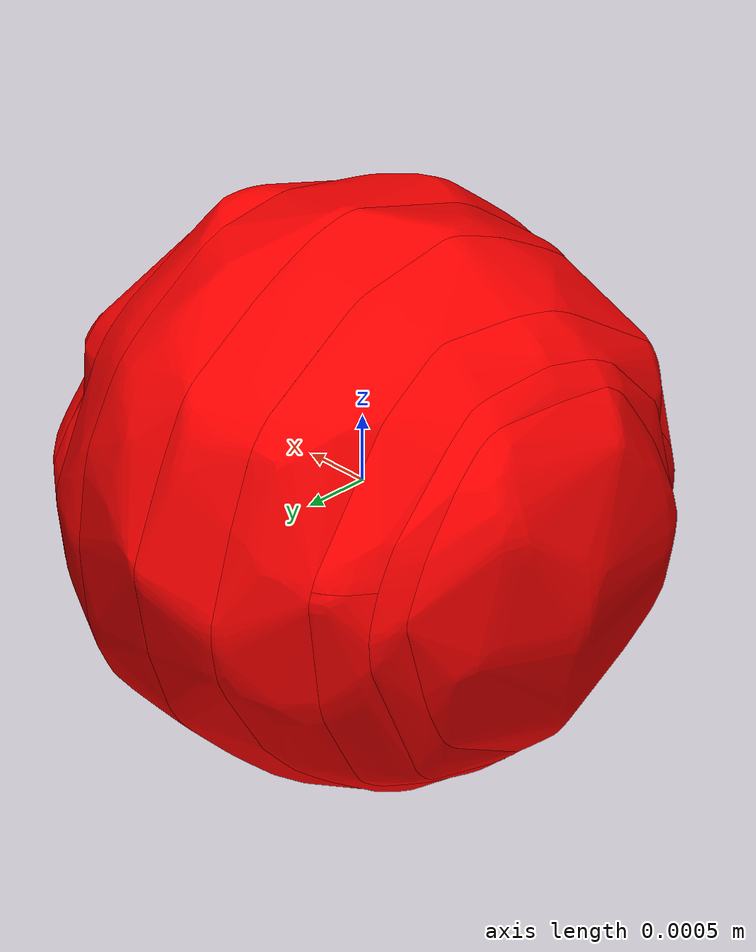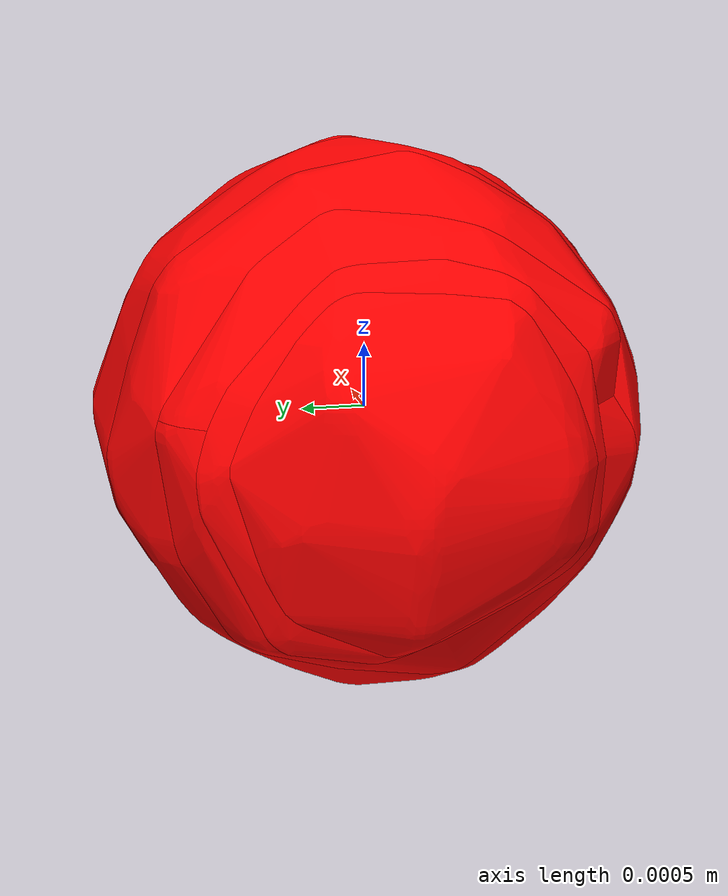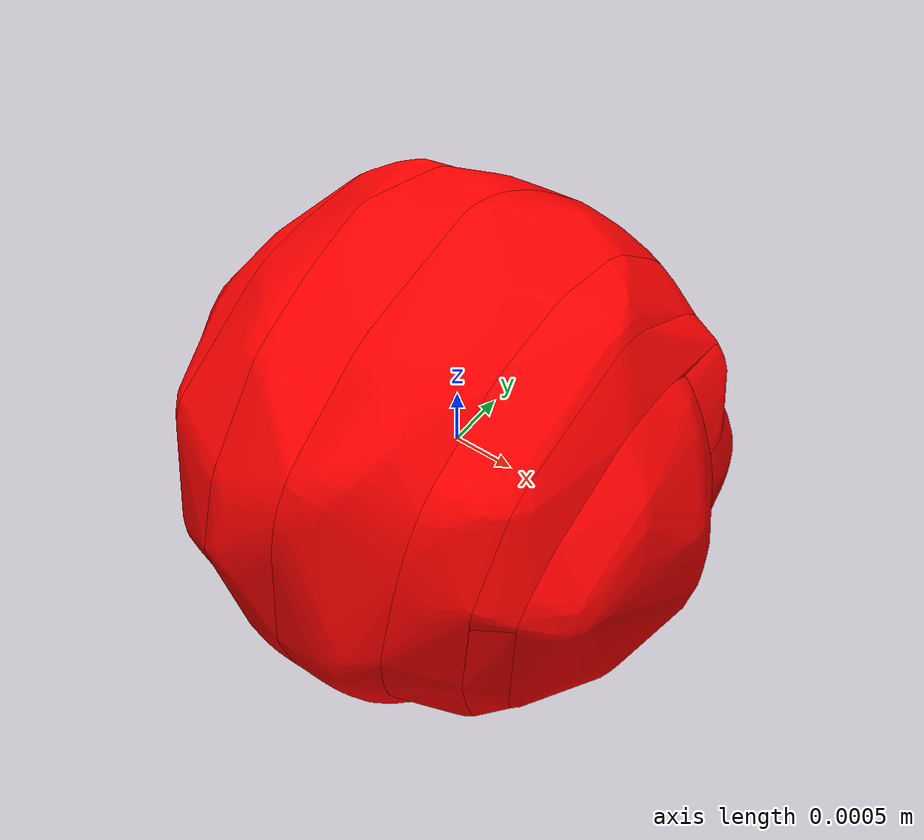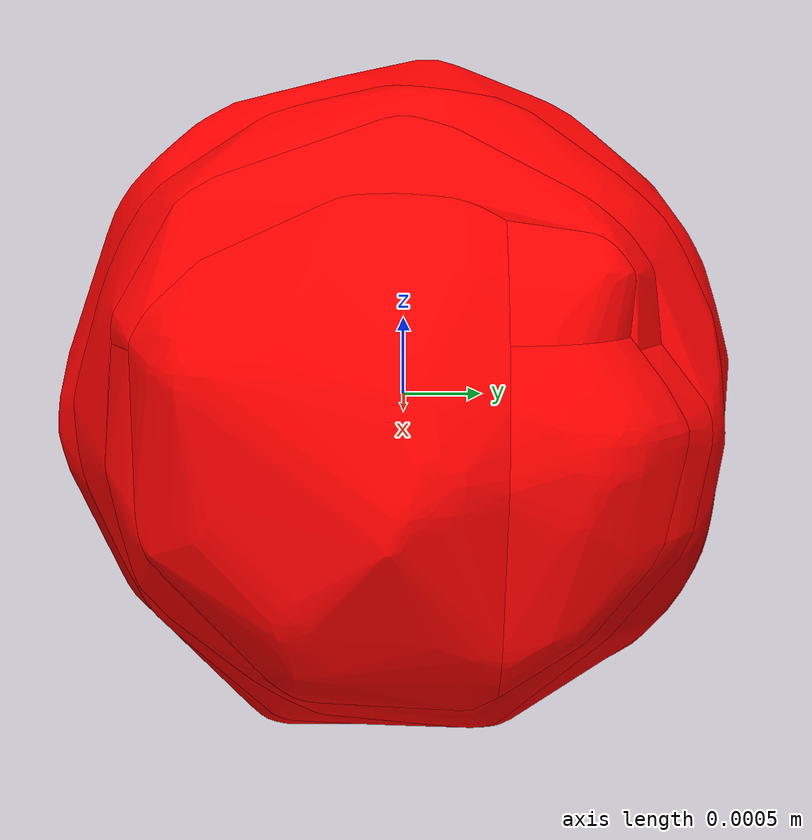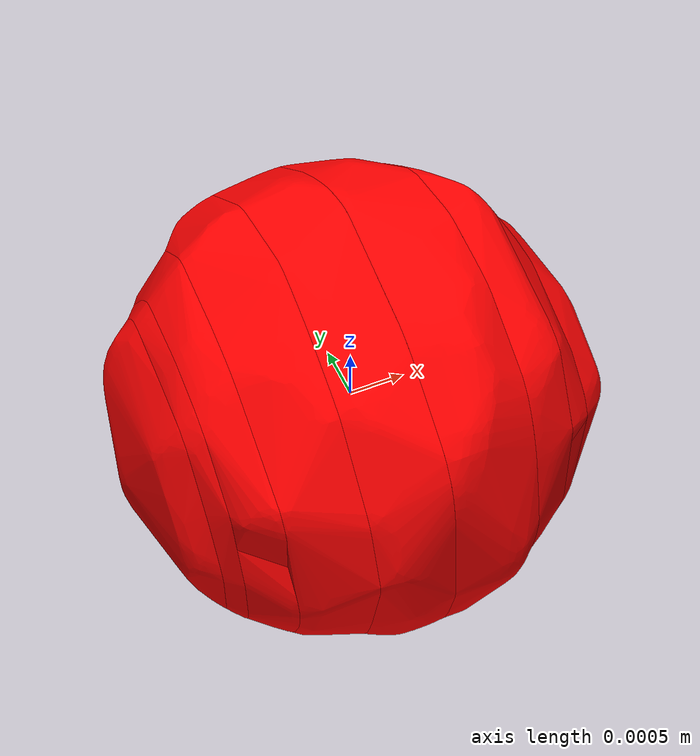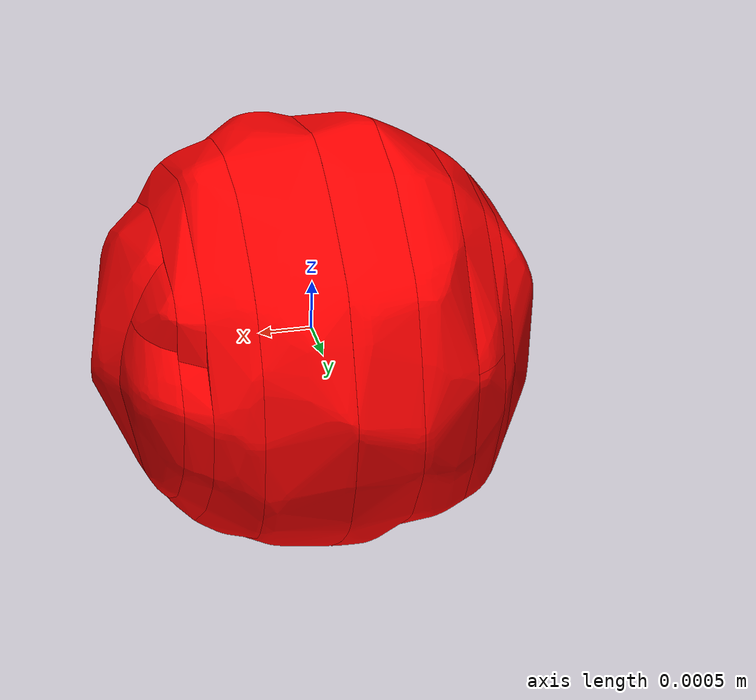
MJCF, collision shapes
<?xml version="1.0" ?>
<mujoco model="pepper_black">
	<compiler meshdir="pepper_black/meshes" texturedir="pepper_black/textures" angle="radian" autolimits="true" balanceinertia="true" boundmass="0.000001" boundinertia="0.000001"/>
	<default>
		<default class="visual">
			<geom contype="0" conaffinity="0"/>
		</default>
		<default class="collision">
			<geom rgba="1.0 0.0 0.0 0.0"/>
		</default>
	</default>
	<asset>
		<mesh name="PepperBlack" file="obj/PepperBlack.obj" scale="1.0 1.0 1.0"/>
		<mesh name="PepperBlack_001" file="stl/PepperBlack_001.stl" scale="1.0 1.0 1.0"/>
		<mesh name="PepperBlack_002" file="stl/PepperBlack_002.stl" scale="1.0 1.0 1.0"/>
		<mesh name="PepperBlack_003" file="stl/PepperBlack_003.stl" scale="1.0 1.0 1.0"/>
		<mesh name="PepperBlack_004" file="stl/PepperBlack_004.stl" scale="1.0 1.0 1.0"/>
		<mesh name="PepperBlack_005" file="stl/PepperBlack_005.stl" scale="1.0 1.0 1.0"/>
		<mesh name="PepperBlack_006" file="stl/PepperBlack_006.stl" scale="1.0 1.0 1.0"/>
		<mesh name="PepperBlack_007" file="stl/PepperBlack_007.stl" scale="1.0 1.0 1.0"/>
		<mesh name="PepperBlack_008" file="stl/PepperBlack_008.stl" scale="1.0 1.0 1.0"/>
		<mesh name="PepperBlack_009" file="stl/PepperBlack_009.stl" scale="1.0 1.0 1.0"/>
		<mesh name="PepperBlack_010" file="stl/PepperBlack_010.stl" scale="1.0 1.0 1.0"/>
		<mesh name="PepperBlack_011" file="stl/PepperBlack_011.stl" scale="1.0 1.0 1.0"/>
		<mesh name="PepperBlack_012" file="stl/PepperBlack_012.stl" scale="1.0 1.0 1.0"/>
		<mesh name="PepperBlack_013" file="stl/PepperBlack_013.stl" scale="1.0 1.0 1.0"/>
		<material name="M_PepperBlack" texture="T_PepperBlack"/>
		<texture name="T_PepperBlack" type="2d" file="T_PepperBlack.png"/>
	</asset>
	<worldbody>
		<body name="pepper_black" pos="0.0 0.0 0.0" quat="1.0 0.0 0.0 0.0">
			<inertial mass="1.9499942936818115e-05" pos="-2.0498882804531604e-05 -2.119790224242024e-05 -3.0677460017614067e-05" quat="0.7049505710601807 -0.25423768162727356 -0.6304733753204346 -0.20226527750492096" diaginertia="3.156022665429248e-11 3.1741682199326604e-11 3.1845109882411293e-11"/>
			<geom name="PepperBlack" type="mesh" pos="0.0 0.0 0.0" quat="1.0 0.0 0.0 0.0" mesh="PepperBlack" material="M_PepperBlack" class="visual"/>
			<geom name="PepperBlack_001" type="mesh" pos="0.0 0.0 0.0" quat="1.0 0.0 0.0 0.0" mesh="PepperBlack_001" class="collision"/>
			<geom name="PepperBlack_002" type="mesh" pos="0.0 0.0 0.0" quat="1.0 0.0 0.0 0.0" mesh="PepperBlack_002" class="collision"/>
			<geom name="PepperBlack_003" type="mesh" pos="0.0 0.0 0.0" quat="1.0 0.0 0.0 0.0" mesh="PepperBlack_003" class="collision"/>
			<geom name="PepperBlack_004" type="mesh" pos="0.0 0.0 0.0" quat="1.0 0.0 0.0 0.0" mesh="PepperBlack_004" class="collision"/>
			<geom name="PepperBlack_005" type="mesh" pos="0.0 0.0 0.0" quat="1.0 0.0 0.0 0.0" mesh="PepperBlack_005" class="collision"/>
			<geom name="PepperBlack_006" type="mesh" pos="0.0 0.0 0.0" quat="1.0 0.0 0.0 0.0" mesh="PepperBlack_006" class="collision"/>
			<geom name="PepperBlack_007" type="mesh" pos="0.0 0.0 0.0" quat="1.0 0.0 0.0 0.0" mesh="PepperBlack_007" class="collision"/>
			<geom name="PepperBlack_008" type="mesh" pos="0.0 0.0 0.0" quat="1.0 0.0 0.0 0.0" mesh="PepperBlack_008" class="collision"/>
			<geom name="PepperBlack_009" type="mesh" pos="0.0 0.0 0.0" quat="1.0 0.0 0.0 0.0" mesh="PepperBlack_009" class="collision"/>
			<geom name="PepperBlack_010" type="mesh" pos="0.0 0.0 0.0" quat="1.0 0.0 0.0 0.0" mesh="PepperBlack_010" class="collision"/>
			<geom name="PepperBlack_011" type="mesh" pos="0.0 0.0 0.0" quat="1.0 0.0 0.0 0.0" mesh="PepperBlack_011" class="collision"/>
			<geom name="PepperBlack_012" type="mesh" pos="0.0 0.0 0.0" quat="1.0 0.0 0.0 0.0" mesh="PepperBlack_012" class="collision"/>
			<geom name="PepperBlack_013" type="mesh" pos="0.0 0.0 0.0" quat="1.0 0.0 0.0 0.0" mesh="PepperBlack_013" class="collision"/>
		</body>
	</worldbody>
	<equality/>
</mujoco>
